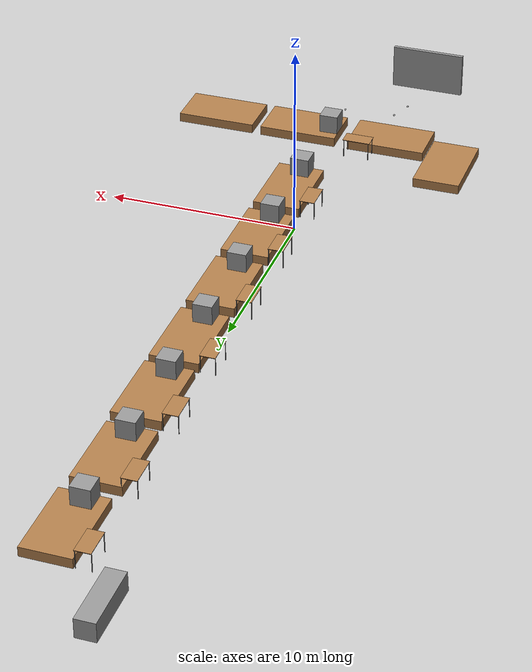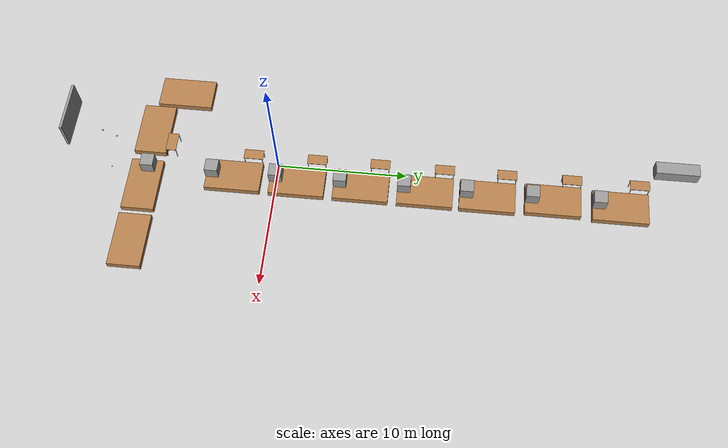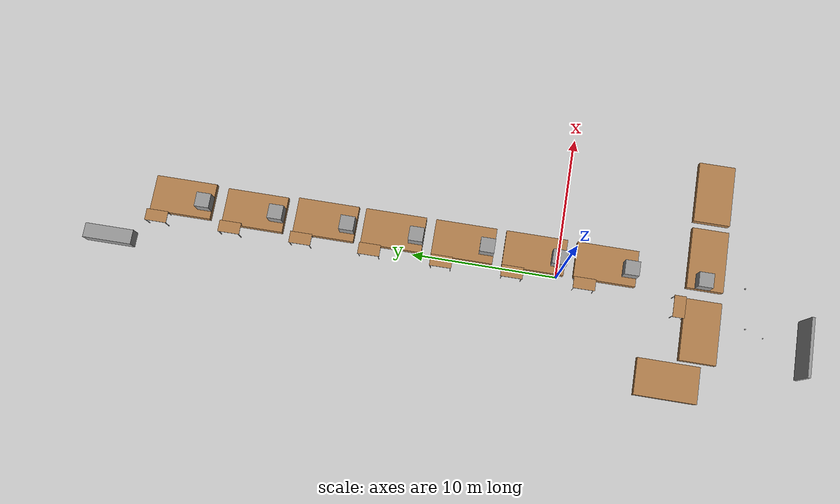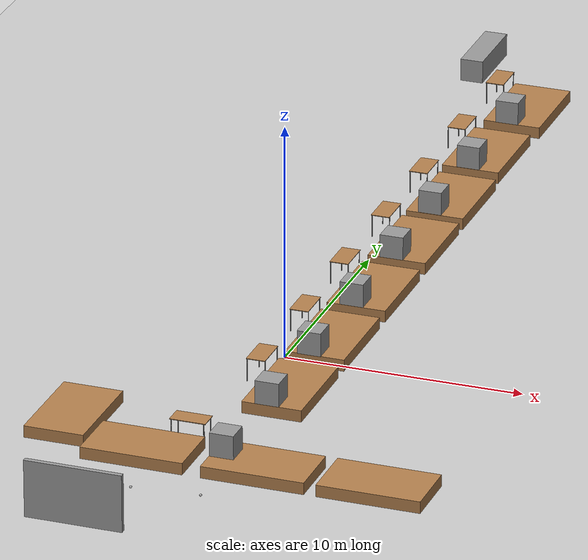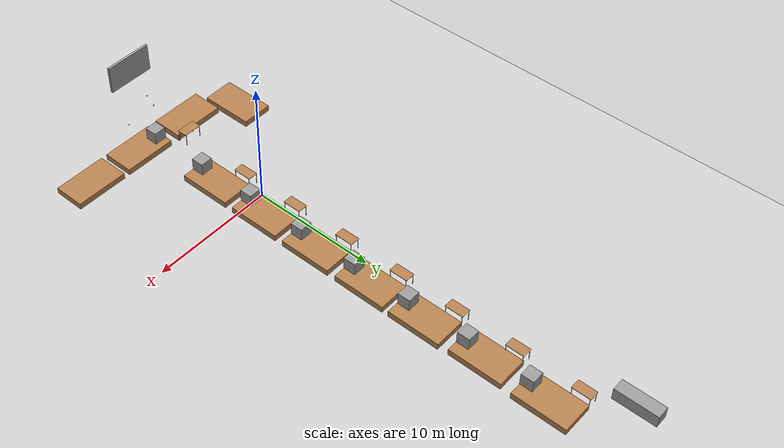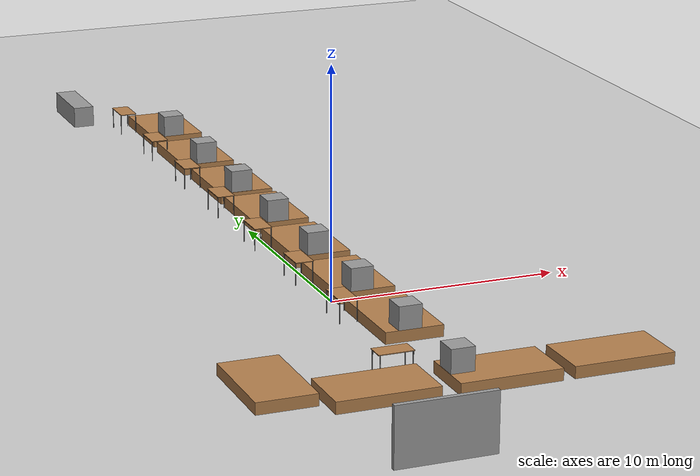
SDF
<sdf version="1.6">
 <world name="default">
  <model name="ground_plane">
   <static>1</static>
   <link name="link">
    <collision name="collision">
     <geometry><plane><normal>0 0 1</normal><size>100 100</size></plane></geometry>
     <surface>
      <contact><collide_bitmask>65535</collide_bitmask></contact>
      <friction><ode><mu>100</mu><mu2>50</mu2></ode></friction>
     </surface>
    </collision>
    <visual name="visual">
     <cast_shadows>0</cast_shadows>
     <geometry><plane><normal>0 0 1</normal><size>100 100</size></plane></geometry>
     <material>
      <script><uri>file://media/materials/scripts/gazebo.material</uri><name>Gazebo/Grey</name></script>
     </material>
    </visual>
   </link>
   <pose>-3.51447 11.9136 0 0 -0 0</pose>
  </model>
  <model name="table_clone">
   <static>1</static>
   <link name="link">
    <collision name="surface">
     <pose>0 0 1 0 -0 0</pose>
     <geometry><box><size>1.5 0.8 0.03</size></box></geometry>
     <surface><friction><ode><mu>0.6</mu><mu2>0.6</mu2></ode></friction></surface>
    </collision>
    <visual name="visual1">
     <pose>0 0 1 0 -0 0</pose>
     <geometry><box><size>1.5 0.8 0.03</size></box></geometry>
     <material>
      <script><uri>file://media/materials/scripts/gazebo.material</uri><name>Gazebo/Wood</name></script>
     </material>
    </visual>
    <collision name="front_left_leg">
     <pose>0.68 0.38 0.5 0 -0 0</pose>
     <geometry><cylinder><radius>0.02</radius><length>1</length></cylinder></geometry>
    </collision>
    <visual name="front_left_leg">
     <pose>0.68 0.38 0.5 0 -0 0</pose>
     <geometry><cylinder><radius>0.02</radius><length>1</length></cylinder></geometry>
     <material>
      <script><uri>file://media/materials/scripts/gazebo.material</uri><name>Gazebo/Grey</name></script>
     </material>
    </visual>
    <collision name="front_right_leg">
     <pose>0.68 -0.38 0.5 0 -0 0</pose>
     <geometry><cylinder><radius>0.02</radius><length>1</length></cylinder></geometry>
    </collision>
    <visual name="front_right_leg">
     <pose>0.68 -0.38 0.5 0 -0 0</pose>
     <geometry><cylinder><radius>0.02</radius><length>1</length></cylinder></geometry>
     <material>
      <script><uri>file://media/materials/scripts/gazebo.material</uri><name>Gazebo/Grey</name></script>
     </material>
    </visual>
    <collision name="back_right_leg">
     <pose>-0.68 -0.38 0.5 0 -0 0</pose>
     <geometry><cylinder><radius>0.02</radius><length>1</length></cylinder></geometry>
    </collision>
    <visual name="back_right_leg">
     <pose>-0.68 -0.38 0.5 0 -0 0</pose>
     <geometry><cylinder><radius>0.02</radius><length>1</length></cylinder></geometry>
     <material>
      <script><uri>file://media/materials/scripts/gazebo.material</uri><name>Gazebo/Grey</name></script>
     </material>
    </visual>
    <collision name="back_left_leg">
     <pose>-0.68 0.38 0.5 0 -0 0</pose>
     <geometry><cylinder><radius>0.02</radius><length>1</length></cylinder></geometry>
    </collision>
    <visual name="back_left_leg">
     <pose>-0.68 0.38 0.5 0 -0 0</pose>
     <geometry><cylinder><radius>0.02</radius><length>1</length></cylinder></geometry>
     <material>
      <script><uri>file://media/materials/scripts/gazebo.material</uri><name>Gazebo/Grey</name></script>
     </material>
    </visual>
   </link>
   <pose>-0.263897 3.07041 0 0 0 -1.56764</pose>
  </model>
  <model name="table_clone_clone">
   <static>1</static>
   <link name="link">
    <collision name="surface">
     <pose>0 0 1 0 -0 0</pose>
     <geometry><box><size>1.5 0.8 0.03</size></box></geometry>
     <surface><friction><ode><mu>0.6</mu><mu2>0.6</mu2></ode></friction></surface>
    </collision>
    <visual name="visual1">
     <pose>0 0 1 0 -0 0</pose>
     <geometry><box><size>1.5 0.8 0.03</size></box></geometry>
     <material>
      <script><uri>file://media/materials/scripts/gazebo.material</uri><name>Gazebo/Wood</name></script>
     </material>
    </visual>
    <collision name="front_left_leg">
     <pose>0.68 0.38 0.5 0 -0 0</pose>
     <geometry><cylinder><radius>0.02</radius><length>1</length></cylinder></geometry>
    </collision>
    <visual name="front_left_leg">
     <pose>0.68 0.38 0.5 0 -0 0</pose>
     <geometry><cylinder><radius>0.02</radius><length>1</length></cylinder></geometry>
     <material>
      <script><uri>file://media/materials/scripts/gazebo.material</uri><name>Gazebo/Grey</name></script>
     </material>
    </visual>
    <collision name="front_right_leg">
     <pose>0.68 -0.38 0.5 0 -0 0</pose>
     <geometry><cylinder><radius>0.02</radius><length>1</length></cylinder></geometry>
    </collision>
    <visual name="front_right_leg">
     <pose>0.68 -0.38 0.5 0 -0 0</pose>
     <geometry><cylinder><radius>0.02</radius><length>1</length></cylinder></geometry>
     <material>
      <script><uri>file://media/materials/scripts/gazebo.material</uri><name>Gazebo/Grey</name></script>
     </material>
    </visual>
    <collision name="back_right_leg">
     <pose>-0.68 -0.38 0.5 0 -0 0</pose>
     <geometry><cylinder><radius>0.02</radius><length>1</length></cylinder></geometry>
    </collision>
    <visual name="back_right_leg">
     <pose>-0.68 -0.38 0.5 0 -0 0</pose>
     <geometry><cylinder><radius>0.02</radius><length>1</length></cylinder></geometry>
     <material>
      <script><uri>file://media/materials/scripts/gazebo.material</uri><name>Gazebo/Grey</name></script>
     </material>
    </visual>
    <collision name="back_left_leg">
     <pose>-0.68 0.38 0.5 0 -0 0</pose>
     <geometry><cylinder><radius>0.02</radius><length>1</length></cylinder></geometry>
    </collision>
    <visual name="back_left_leg">
     <pose>-0.68 0.38 0.5 0 -0 0</pose>
     <geometry><cylinder><radius>0.02</radius><length>1</length></cylinder></geometry>
     <material>
      <script><uri>file://media/materials/scripts/gazebo.material</uri><name>Gazebo/Grey</name></script>
     </material>
    </visual>
   </link>
   <pose>-0.280452 -1.87389 0 0 0 -1.56764</pose>
  </model>
  <model name="table_clone_clone_0">
   <static>1</static>
   <link name="link">
    <collision name="surface">
     <pose>0 0 1 0 -0 0</pose>
     <geometry><box><size>1.5 0.8 0.03</size></box></geometry>
     <surface><friction><ode><mu>0.6</mu><mu2>0.6</mu2></ode></friction></surface>
    </collision>
    <visual name="visual1">
     <pose>0 0 1 0 -0 0</pose>
     <geometry><box><size>1.5 0.8 0.03</size></box></geometry>
     <material>
      <script><uri>file://media/materials/scripts/gazebo.material</uri><name>Gazebo/Wood</name></script>
     </material>
    </visual>
    <collision name="front_left_leg">
     <pose>0.68 0.38 0.5 0 -0 0</pose>
     <geometry><cylinder><radius>0.02</radius><length>1</length></cylinder></geometry>
    </collision>
    <visual name="front_left_leg">
     <pose>0.68 0.38 0.5 0 -0 0</pose>
     <geometry><cylinder><radius>0.02</radius><length>1</length></cylinder></geometry>
     <material>
      <script><uri>file://media/materials/scripts/gazebo.material</uri><name>Gazebo/Grey</name></script>
     </material>
    </visual>
    <collision name="front_right_leg">
     <pose>0.68 -0.38 0.5 0 -0 0</pose>
     <geometry><cylinder><radius>0.02</radius><length>1</length></cylinder></geometry>
    </collision>
    <visual name="front_right_leg">
     <pose>0.68 -0.38 0.5 0 -0 0</pose>
     <geometry><cylinder><radius>0.02</radius><length>1</length></cylinder></geometry>
     <material>
      <script><uri>file://media/materials/scripts/gazebo.material</uri><name>Gazebo/Grey</name></script>
     </material>
    </visual>
    <collision name="back_right_leg">
     <pose>-0.68 -0.38 0.5 0 -0 0</pose>
     <geometry><cylinder><radius>0.02</radius><length>1</length></cylinder></geometry>
    </collision>
    <visual name="back_right_leg">
     <pose>-0.68 -0.38 0.5 0 -0 0</pose>
     <geometry><cylinder><radius>0.02</radius><length>1</length></cylinder></geometry>
     <material>
      <script><uri>file://media/materials/scripts/gazebo.material</uri><name>Gazebo/Grey</name></script>
     </material>
    </visual>
    <collision name="back_left_leg">
     <pose>-0.68 0.38 0.5 0 -0 0</pose>
     <geometry><cylinder><radius>0.02</radius><length>1</length></cylinder></geometry>
    </collision>
    <visual name="back_left_leg">
     <pose>-0.68 0.38 0.5 0 -0 0</pose>
     <geometry><cylinder><radius>0.02</radius><length>1</length></cylinder></geometry>
     <material>
      <script><uri>file://media/materials/scripts/gazebo.material</uri><name>Gazebo/Grey</name></script>
     </material>
    </visual>
   </link>
   <pose>-0.311266 7.9439 0 0 0 -1.56764</pose>
  </model>
  <model name="table_clone_clone_1">
   <static>1</static>
   <link name="link">
    <collision name="surface">
     <pose>0 0 1 0 -0 0</pose>
     <geometry><box><size>1.5 0.8 0.03</size></box></geometry>
     <surface><friction><ode><mu>0.6</mu><mu2>0.6</mu2></ode></friction></surface>
    </collision>
    <visual name="visual1">
     <pose>0 0 1 0 -0 0</pose>
     <geometry><box><size>1.5 0.8 0.03</size></box></geometry>
     <material>
      <script><uri>file://media/materials/scripts/gazebo.material</uri><name>Gazebo/Wood</name></script>
     </material>
    </visual>
    <collision name="front_left_leg">
     <pose>0.68 0.38 0.5 0 -0 0</pose>
     <geometry><cylinder><radius>0.02</radius><length>1</length></cylinder></geometry>
    </collision>
    <visual name="front_left_leg">
     <pose>0.68 0.38 0.5 0 -0 0</pose>
     <geometry><cylinder><radius>0.02</radius><length>1</length></cylinder></geometry>
     <material>
      <script><uri>file://media/materials/scripts/gazebo.material</uri><name>Gazebo/Grey</name></script>
     </material>
    </visual>
    <collision name="front_right_leg">
     <pose>0.68 -0.38 0.5 0 -0 0</pose>
     <geometry><cylinder><radius>0.02</radius><length>1</length></cylinder></geometry>
    </collision>
    <visual name="front_right_leg">
     <pose>0.68 -0.38 0.5 0 -0 0</pose>
     <geometry><cylinder><radius>0.02</radius><length>1</length></cylinder></geometry>
     <material>
      <script><uri>file://media/materials/scripts/gazebo.material</uri><name>Gazebo/Grey</name></script>
     </material>
    </visual>
    <collision name="back_right_leg">
     <pose>-0.68 -0.38 0.5 0 -0 0</pose>
     <geometry><cylinder><radius>0.02</radius><length>1</length></cylinder></geometry>
    </collision>
    <visual name="back_right_leg">
     <pose>-0.68 -0.38 0.5 0 -0 0</pose>
     <geometry><cylinder><radius>0.02</radius><length>1</length></cylinder></geometry>
     <material>
      <script><uri>file://media/materials/scripts/gazebo.material</uri><name>Gazebo/Grey</name></script>
     </material>
    </visual>
    <collision name="back_left_leg">
     <pose>-0.68 0.38 0.5 0 -0 0</pose>
     <geometry><cylinder><radius>0.02</radius><length>1</length></cylinder></geometry>
    </collision>
    <visual name="back_left_leg">
     <pose>-0.68 0.38 0.5 0 -0 0</pose>
     <geometry><cylinder><radius>0.02</radius><length>1</length></cylinder></geometry>
     <material>
      <script><uri>file://media/materials/scripts/gazebo.material</uri><name>Gazebo/Grey</name></script>
     </material>
    </visual>
   </link>
   <pose>-0.283344 12.903 0 0 0 -1.56764</pose>
  </model>
  <model name="table_clone_clone_2">
   <static>1</static>
   <link name="link">
    <collision name="surface">
     <pose>0 0 1 0 -0 0</pose>
     <geometry><box><size>1.5 0.8 0.03</size></box></geometry>
     <surface><friction><ode><mu>0.6</mu><mu2>0.6</mu2></ode></friction></surface>
    </collision>
    <visual name="visual1">
     <pose>0 0 1 0 -0 0</pose>
     <geometry><box><size>1.5 0.8 0.03</size></box></geometry>
     <material>
      <script><uri>file://media/materials/scripts/gazebo.material</uri><name>Gazebo/Wood</name></script>
     </material>
    </visual>
    <collision name="front_left_leg">
     <pose>0.68 0.38 0.5 0 -0 0</pose>
     <geometry><cylinder><radius>0.02</radius><length>1</length></cylinder></geometry>
    </collision>
    <visual name="front_left_leg">
     <pose>0.68 0.38 0.5 0 -0 0</pose>
     <geometry><cylinder><radius>0.02</radius><length>1</length></cylinder></geometry>
     <material>
      <script><uri>file://media/materials/scripts/gazebo.material</uri><name>Gazebo/Grey</name></script>
     </material>
    </visual>
    <collision name="front_right_leg">
     <pose>0.68 -0.38 0.5 0 -0 0</pose>
     <geometry><cylinder><radius>0.02</radius><length>1</length></cylinder></geometry>
    </collision>
    <visual name="front_right_leg">
     <pose>0.68 -0.38 0.5 0 -0 0</pose>
     <geometry><cylinder><radius>0.02</radius><length>1</length></cylinder></geometry>
     <material>
      <script><uri>file://media/materials/scripts/gazebo.material</uri><name>Gazebo/Grey</name></script>
     </material>
    </visual>
    <collision name="back_right_leg">
     <pose>-0.68 -0.38 0.5 0 -0 0</pose>
     <geometry><cylinder><radius>0.02</radius><length>1</length></cylinder></geometry>
    </collision>
    <visual name="back_right_leg">
     <pose>-0.68 -0.38 0.5 0 -0 0</pose>
     <geometry><cylinder><radius>0.02</radius><length>1</length></cylinder></geometry>
     <material>
      <script><uri>file://media/materials/scripts/gazebo.material</uri><name>Gazebo/Grey</name></script>
     </material>
    </visual>
    <collision name="back_left_leg">
     <pose>-0.68 0.38 0.5 0 -0 0</pose>
     <geometry><cylinder><radius>0.02</radius><length>1</length></cylinder></geometry>
    </collision>
    <visual name="back_left_leg">
     <pose>-0.68 0.38 0.5 0 -0 0</pose>
     <geometry><cylinder><radius>0.02</radius><length>1</length></cylinder></geometry>
     <material>
      <script><uri>file://media/materials/scripts/gazebo.material</uri><name>Gazebo/Grey</name></script>
     </material>
    </visual>
   </link>
   <pose>-0.282545 17.6818 0 0 0 -1.56764</pose>
  </model>
  <model name="table_clone_clone_3">
   <static>1</static>
   <link name="link">
    <collision name="surface">
     <pose>0 0 1 0 -0 0</pose>
     <geometry><box><size>1.5 0.8 0.03</size></box></geometry>
     <surface><friction><ode><mu>0.6</mu><mu2>0.6</mu2></ode></friction></surface>
    </collision>
    <visual name="visual1">
     <pose>0 0 1 0 -0 0</pose>
     <geometry><box><size>1.5 0.8 0.03</size></box></geometry>
     <material>
      <script><uri>file://media/materials/scripts/gazebo.material</uri><name>Gazebo/Wood</name></script>
     </material>
    </visual>
    <collision name="front_left_leg">
     <pose>0.68 0.38 0.5 0 -0 0</pose>
     <geometry><cylinder><radius>0.02</radius><length>1</length></cylinder></geometry>
    </collision>
    <visual name="front_left_leg">
     <pose>0.68 0.38 0.5 0 -0 0</pose>
     <geometry><cylinder><radius>0.02</radius><length>1</length></cylinder></geometry>
     <material>
      <script><uri>file://media/materials/scripts/gazebo.material</uri><name>Gazebo/Grey</name></script>
     </material>
    </visual>
    <collision name="front_right_leg">
     <pose>0.68 -0.38 0.5 0 -0 0</pose>
     <geometry><cylinder><radius>0.02</radius><length>1</length></cylinder></geometry>
    </collision>
    <visual name="front_right_leg">
     <pose>0.68 -0.38 0.5 0 -0 0</pose>
     <geometry><cylinder><radius>0.02</radius><length>1</length></cylinder></geometry>
     <material>
      <script><uri>file://media/materials/scripts/gazebo.material</uri><name>Gazebo/Grey</name></script>
     </material>
    </visual>
    <collision name="back_right_leg">
     <pose>-0.68 -0.38 0.5 0 -0 0</pose>
     <geometry><cylinder><radius>0.02</radius><length>1</length></cylinder></geometry>
    </collision>
    <visual name="back_right_leg">
     <pose>-0.68 -0.38 0.5 0 -0 0</pose>
     <geometry><cylinder><radius>0.02</radius><length>1</length></cylinder></geometry>
     <material>
      <script><uri>file://media/materials/scripts/gazebo.material</uri><name>Gazebo/Grey</name></script>
     </material>
    </visual>
    <collision name="back_left_leg">
     <pose>-0.68 0.38 0.5 0 -0 0</pose>
     <geometry><cylinder><radius>0.02</radius><length>1</length></cylinder></geometry>
    </collision>
    <visual name="back_left_leg">
     <pose>-0.68 0.38 0.5 0 -0 0</pose>
     <geometry><cylinder><radius>0.02</radius><length>1</length></cylinder></geometry>
     <material>
      <script><uri>file://media/materials/scripts/gazebo.material</uri><name>Gazebo/Grey</name></script>
     </material>
    </visual>
   </link>
   <pose>-0.292 22.6184 0 0 0 -1.56764</pose>
  </model>
  <model name="table_clone_clone_4">
   <static>1</static>
   <link name="link">
    <collision name="surface">
     <pose>0 0 1 0 -0 0</pose>
     <geometry><box><size>1.5 0.8 0.03</size></box></geometry>
     <surface><friction><ode><mu>0.6</mu><mu2>0.6</mu2></ode></friction></surface>
    </collision>
    <visual name="visual1">
     <pose>0 0 1 0 -0 0</pose>
     <geometry><box><size>1.5 0.8 0.03</size></box></geometry>
     <material>
      <script><uri>file://media/materials/scripts/gazebo.material</uri><name>Gazebo/Wood</name></script>
     </material>
    </visual>
    <collision name="front_left_leg">
     <pose>0.68 0.38 0.5 0 -0 0</pose>
     <geometry><cylinder><radius>0.02</radius><length>1</length></cylinder></geometry>
    </collision>
    <visual name="front_left_leg">
     <pose>0.68 0.38 0.5 0 -0 0</pose>
     <geometry><cylinder><radius>0.02</radius><length>1</length></cylinder></geometry>
     <material>
      <script><uri>file://media/materials/scripts/gazebo.material</uri><name>Gazebo/Grey</name></script>
     </material>
    </visual>
    <collision name="front_right_leg">
     <pose>0.68 -0.38 0.5 0 -0 0</pose>
     <geometry><cylinder><radius>0.02</radius><length>1</length></cylinder></geometry>
    </collision>
    <visual name="front_right_leg">
     <pose>0.68 -0.38 0.5 0 -0 0</pose>
     <geometry><cylinder><radius>0.02</radius><length>1</length></cylinder></geometry>
     <material>
      <script><uri>file://media/materials/scripts/gazebo.material</uri><name>Gazebo/Grey</name></script>
     </material>
    </visual>
    <collision name="back_right_leg">
     <pose>-0.68 -0.38 0.5 0 -0 0</pose>
     <geometry><cylinder><radius>0.02</radius><length>1</length></cylinder></geometry>
    </collision>
    <visual name="back_right_leg">
     <pose>-0.68 -0.38 0.5 0 -0 0</pose>
     <geometry><cylinder><radius>0.02</radius><length>1</length></cylinder></geometry>
     <material>
      <script><uri>file://media/materials/scripts/gazebo.material</uri><name>Gazebo/Grey</name></script>
     </material>
    </visual>
    <collision name="back_left_leg">
     <pose>-0.68 0.38 0.5 0 -0 0</pose>
     <geometry><cylinder><radius>0.02</radius><length>1</length></cylinder></geometry>
    </collision>
    <visual name="back_left_leg">
     <pose>-0.68 0.38 0.5 0 -0 0</pose>
     <geometry><cylinder><radius>0.02</radius><length>1</length></cylinder></geometry>
     <material>
      <script><uri>file://media/materials/scripts/gazebo.material</uri><name>Gazebo/Grey</name></script>
     </material>
    </visual>
   </link>
   <pose>-0.3 27.7319 0 0 0 -1.56764</pose>
  </model>
  <model name="table_clone_clone_5_clone_0">
   <static>1</static>
   <link name="link">
    <collision name="surface">
     <pose>0 0 1 0 -0 0</pose>
     <geometry><box><size>1.5 0.8 0.03</size></box></geometry>
     <surface><friction><ode><mu>0.6</mu><mu2>0.6</mu2></ode></friction></surface>
    </collision>
    <visual name="visual1">
     <pose>0 0 1 0 -0 0</pose>
     <geometry><box><size>1.5 0.8 0.03</size></box></geometry>
     <material>
      <script><uri>file://media/materials/scripts/gazebo.material</uri><name>Gazebo/Wood</name></script>
     </material>
    </visual>
    <collision name="front_left_leg">
     <pose>0.68 0.38 0.5 0 -0 0</pose>
     <geometry><cylinder><radius>0.02</radius><length>1</length></cylinder></geometry>
    </collision>
    <visual name="front_left_leg">
     <pose>0.68 0.38 0.5 0 -0 0</pose>
     <geometry><cylinder><radius>0.02</radius><length>1</length></cylinder></geometry>
     <material>
      <script><uri>file://media/materials/scripts/gazebo.material</uri><name>Gazebo/Grey</name></script>
     </material>
    </visual>
    <collision name="front_right_leg">
     <pose>0.68 -0.38 0.5 0 -0 0</pose>
     <geometry><cylinder><radius>0.02</radius><length>1</length></cylinder></geometry>
    </collision>
    <visual name="front_right_leg">
     <pose>0.68 -0.38 0.5 0 -0 0</pose>
     <geometry><cylinder><radius>0.02</radius><length>1</length></cylinder></geometry>
     <material>
      <script><uri>file://media/materials/scripts/gazebo.material</uri><name>Gazebo/Grey</name></script>
     </material>
    </visual>
    <collision name="back_right_leg">
     <pose>-0.68 -0.38 0.5 0 -0 0</pose>
     <geometry><cylinder><radius>0.02</radius><length>1</length></cylinder></geometry>
    </collision>
    <visual name="back_right_leg">
     <pose>-0.68 -0.38 0.5 0 -0 0</pose>
     <geometry><cylinder><radius>0.02</radius><length>1</length></cylinder></geometry>
     <material>
      <script><uri>file://media/materials/scripts/gazebo.material</uri><name>Gazebo/Grey</name></script>
     </material>
    </visual>
    <collision name="back_left_leg">
     <pose>-0.68 0.38 0.5 0 -0 0</pose>
     <geometry><cylinder><radius>0.02</radius><length>1</length></cylinder></geometry>
    </collision>
    <visual name="back_left_leg">
     <pose>-0.68 0.38 0.5 0 -0 0</pose>
     <geometry><cylinder><radius>0.02</radius><length>1</length></cylinder></geometry>
     <material>
      <script><uri>file://media/materials/scripts/gazebo.material</uri><name>Gazebo/Grey</name></script>
     </material>
    </visual>
   </link>
   <pose>-0.816001 -8.38126 0 0 -0 0</pose>
  </model>
  <model name="L_wall_wood">
   <pose>1.29872 -8.7033 0 0 -0 0</pose>
   <link name="Wall_14">
    <collision name="Wall_14_Collision">
     <geometry><box><size>4.25 2.5 0.5</size></box></geometry>
     <pose>0 0 0.25 0 -0 0</pose>
    </collision>
    <visual name="Wall_14_Visual">
     <pose>0 0 0.25 0 -0 0</pose>
     <geometry><box><size>4.25 2.5 0.5</size></box></geometry>
     <material>
      <script><uri>file://media/materials/scripts/gazebo.material</uri><name>Gazebo/Wood</name></script>
      <ambient>1 1 1 1</ambient>
     </material>
     <meta><layer>0</layer></meta>
    </visual>
    <pose>6.238 -1.377 0 0 -0 0</pose>
   </link>
   <link name="Wall_16">
    <collision name="Wall_16_Collision">
     <geometry><box><size>4.25 2.5 0.5</size></box></geometry>
     <pose>0 0 0.25 0 -0 0</pose>
    </collision>
    <visual name="Wall_16_Visual">
     <pose>0 0 0.25 0 -0 0</pose>
     <geometry><box><size>4.25 2.5 0.5</size></box></geometry>
     <material>
      <script><uri>file://media/materials/scripts/gazebo.material</uri><name>Gazebo/Wood</name></script>
      <ambient>1 1 1 1</ambient>
     </material>
     <meta><layer>0</layer></meta>
    </visual>
    <pose>1.505 -1.377 0 0 -0 3.14159</pose>
   </link>
   <link name="Wall_18">
    <collision name="Wall_18_Collision">
     <geometry><box><size>4.25 2.5 0.5</size></box></geometry>
     <pose>0 0 0.25 0 -0 0</pose>
    </collision>
    <visual name="Wall_18_Visual">
     <pose>0 0 0.25 0 -0 0</pose>
     <geometry><box><size>4.25 2.5 0.5</size></box></geometry>
     <material>
      <script><uri>file://media/materials/scripts/gazebo.material</uri><name>Gazebo/Wood</name></script>
      <ambient>1 1 1 1</ambient>
     </material>
     <meta><layer>0</layer></meta>
    </visual>
    <pose>-3.485 -1.377 0 0 -0 3.14159</pose>
   </link>
   <link name="Wall_20">
    <collision name="Wall_20_Collision">
     <geometry><box><size>4.25 2.5 0.5</size></box></geometry>
     <pose>0 0 0.25 0 -0 0</pose>
    </collision>
    <visual name="Wall_20_Visual">
     <pose>0 0 0.25 0 -0 0</pose>
     <geometry><box><size>4.25 2.5 0.5</size></box></geometry>
     <material>
      <script><uri>file://media/materials/scripts/gazebo.material</uri><name>Gazebo/Wood</name></script>
      <ambient>1 1 1 1</ambient>
     </material>
     <meta><layer>0</layer></meta>
    </visual>
    <pose>-7.113 0.502 0 0 -0 1.5708</pose>
   </link>
   <static>1</static>
  </model>
  <model name="grey_wall_0_clone_0">
   <static>1</static>
   <link name="link">
    <pose>0 0 1.4 0 -0 0</pose>
    <collision name="collision"><geometry><box><size>4 0.2 2.4</size></box></geometry></collision>
    <visual name="visual">
     <cast_shadows>0</cast_shadows>
     <geometry><box><size>4 0.2 2.4</size></box></geometry>
     <material>
      <script>
       <uri>model://grey_wall/materials/scripts</uri>
       <uri>model://grey_wall/materials/textures</uri>
       <name>vrc/grey_wall</name>
      </script>
     </material>
    </visual>
   </link>
   <pose>-2.37767 -16.7729 -0.12326 0 -0 0</pose>
  </model>
  <model name="unit_box">
   <pose>-2.05231 30.7133 0.529992 -4e-06 2e-06 0.001863</pose>
   <link name="link">
    <inertial>
     <mass>1</mass>
     <inertia>
      <ixx>0.166667</ixx>
      <ixy>0</ixy>
      <ixz>0</ixz>
      <iyy>0.166667</iyy>
      <iyz>0</iyz>
      <izz>0.166667</izz>
     </inertia>
    </inertial>
    <collision name="collision"><geometry><box><size>1 3.3369 1</size></box></geometry></collision>
    <visual name="visual">
     <geometry><box><size>1 3.3369 1</size></box></geometry>
     <material>
      <script><name>Gazebo/Grey</name><uri>file://media/materials/scripts/gazebo.material</uri></script>
     </material>
    </visual>
   </link>
  </model>
  <model name="unit_box_1">
   <pose>1.19128 24.6948 1 0 -0 0.000556</pose>
   <link name="link">
    <inertial>
     <mass>1</mass>
     <inertia>
      <ixx>0.166667</ixx>
      <ixy>0</ixy>
      <ixz>0</ixz>
      <iyy>0.166667</iyy>
      <iyz>0</iyz>
      <izz>0.166667</izz>
     </inertia>
    </inertial>
    <collision name="collision"><geometry><box><size>1 1 1</size></box></geometry></collision>
    <visual name="visual">
     <geometry><box><size>1 1 1</size></box></geometry>
     <material>
      <script><name>Gazebo/Grey</name><uri>file://media/materials/scripts/gazebo.material</uri></script>
     </material>
    </visual>
   </link>
  </model>
  <model name="unit_box_2">
   <pose>1.1742 19.6286 1 0 -0 0.000336</pose>
   <link name="link">
    <inertial>
     <mass>1</mass>
     <inertia>
      <ixx>0.166667</ixx>
      <ixy>0</ixy>
      <ixz>0</ixz>
      <iyy>0.166667</iyy>
      <iyz>0</iyz>
      <izz>0.166667</izz>
     </inertia>
    </inertial>
    <collision name="collision"><geometry><box><size>1 1 1</size></box></geometry></collision>
    <visual name="visual">
     <geometry><box><size>1 1 1</size></box></geometry>
     <material>
      <script><name>Gazebo/Grey</name><uri>file://media/materials/scripts/gazebo.material</uri></script>
     </material>
    </visual>
   </link>
  </model>
  <model name="unit_box_3">
   <pose>1.18793 14.6668 1 0 -0 0.000345</pose>
   <link name="link">
    <inertial>
     <mass>1</mass>
     <inertia>
      <ixx>0.166667</ixx>
      <ixy>0</ixy>
      <ixz>0</ixz>
      <iyy>0.166667</iyy>
      <iyz>0</iyz>
      <izz>0.166667</izz>
     </inertia>
    </inertial>
    <collision name="collision"><geometry><box><size>1 1 1</size></box></geometry></collision>
    <visual name="visual">
     <geometry><box><size>1 1 1</size></box></geometry>
     <material>
      <script><name>Gazebo/Grey</name><uri>file://media/materials/scripts/gazebo.material</uri></script>
     </material>
    </visual>
   </link>
  </model>
  <model name="unit_box_4">
   <pose>1.18477 9.88305 1 0 -0 0.00055</pose>
   <link name="link">
    <inertial>
     <mass>1</mass>
     <inertia>
      <ixx>0.166667</ixx>
      <ixy>0</ixy>
      <ixz>0</ixz>
      <iyy>0.166667</iyy>
      <iyz>0</iyz>
      <izz>0.166667</izz>
     </inertia>
    </inertial>
    <collision name="collision"><geometry><box><size>1 1 1</size></box></geometry></collision>
    <visual name="visual">
     <geometry><box><size>1 1 1</size></box></geometry>
     <material>
      <script><name>Gazebo/Grey</name><uri>file://media/materials/scripts/gazebo.material</uri></script>
     </material>
    </visual>
   </link>
  </model>
  <model name="unit_box_5">
   <pose>1.20118 4.9847 1 0 -0 0.000352</pose>
   <link name="link">
    <inertial>
     <mass>1</mass>
     <inertia>
      <ixx>0.166667</ixx>
      <ixy>0</ixy>
      <ixz>0</ixz>
      <iyy>0.166667</iyy>
      <iyz>0</iyz>
      <izz>0.166667</izz>
     </inertia>
    </inertial>
    <collision name="collision"><geometry><box><size>1 1 1</size></box></geometry></collision>
    <visual name="visual">
     <geometry><box><size>1 1 1</size></box></geometry>
     <material>
      <script><name>Gazebo/Grey</name><uri>file://media/materials/scripts/gazebo.material</uri></script>
     </material>
    </visual>
   </link>
  </model>
  <model name="unit_box_6">
   <pose>1.17746 0.02476 1 0 -0 0.00037</pose>
   <link name="link">
    <inertial>
     <mass>1</mass>
     <inertia>
      <ixx>0.166667</ixx>
      <ixy>0</ixy>
      <ixz>0</ixz>
      <iyy>0.166667</iyy>
      <iyz>0</iyz>
      <izz>0.166667</izz>
     </inertia>
    </inertial>
    <collision name="collision"><geometry><box><size>1 1 1</size></box></geometry></collision>
    <visual name="visual">
     <geometry><box><size>1 1 1</size></box></geometry>
     <material>
      <script><name>Gazebo/Grey</name><uri>file://media/materials/scripts/gazebo.material</uri></script>
     </material>
    </visual>
   </link>
  </model>
  <model name="unit_box_7">
   <pose>1.21385 -4.87739 1 0 -0 3.2e-05</pose>
   <link name="link">
    <inertial>
     <mass>1</mass>
     <inertia>
      <ixx>0.166667</ixx>
      <ixy>0</ixy>
      <ixz>0</ixz>
      <iyy>0.166667</iyy>
      <iyz>0</iyz>
      <izz>0.166667</izz>
     </inertia>
    </inertial>
    <collision name="collision"><geometry><box><size>1 1 1</size></box></geometry></collision>
    <visual name="visual">
     <geometry><box><size>1 1 1</size></box></geometry>
     <material>
      <script><name>Gazebo/Grey</name><uri>file://media/materials/scripts/gazebo.material</uri></script>
     </material>
    </visual>
   </link>
  </model>
  <model name="unit_box_9">
   <pose>1.19296 -9.87173 1 0 -0 0.000369</pose>
   <link name="link">
    <inertial>
     <mass>1</mass>
     <inertia>
      <ixx>0.166667</ixx>
      <ixy>0</ixy>
      <ixz>0</ixz>
      <iyy>0.166667</iyy>
      <iyz>0</iyz>
      <izz>0.166667</izz>
     </inertia>
    </inertial>
    <collision name="collision"><geometry><box><size>1 1 1</size></box></geometry></collision>
    <visual name="visual">
     <geometry><box><size>1 1 1</size></box></geometry>
     <material>
      <script><name>Gazebo/Grey</name><uri>file://media/materials/scripts/gazebo.material</uri></script>
     </material>
    </visual>
   </link>
  </model>
  <model name="cut_floor_wood">
   <pose>1.33828 11.5505 0 0 -0 0</pose>
   <link name="Wall_0">
    <collision name="Wall_0_Collision">
     <geometry><box><size>4.25 2.5 0.5</size></box></geometry>
     <pose>0 0 0.25 0 -0 0</pose>
    </collision>
    <visual name="Wall_0_Visual">
     <pose>0 0 0.25 0 -0 0</pose>
     <geometry><box><size>4.25 2.5 0.5</size></box></geometry>
     <material>
      <script><uri>file://media/materials/scripts/gazebo.material</uri><name>Gazebo/Wood</name></script>
      <ambient>1 1 1 1</ambient>
     </material>
     <meta><layer>0</layer></meta>
    </visual>
    <pose>0.0645 -14.794 0 0 -0 1.5708</pose>
   </link>
   <link name="Wall_10">
    <collision name="Wall_10_Collision">
     <geometry><box><size>4.25 2.5 0.5</size></box></geometry>
     <pose>0 0 0.25 0 -0 0</pose>
    </collision>
    <visual name="Wall_10_Visual">
     <pose>0 0 0.25 0 -0 0</pose>
     <geometry><box><size>4.25 2.5 0.5</size></box></geometry>
     <material>
      <script><uri>file://media/materials/scripts/gazebo.material</uri><name>Gazebo/Wood</name></script>
      <ambient>1 1 1 1</ambient>
     </material>
     <meta><layer>0</layer></meta>
    </visual>
    <pose>-0.0645 9.688 0 0 -0 1.5708</pose>
   </link>
   <link name="Wall_12">
    <collision name="Wall_12_Collision">
     <geometry><box><size>4.25 2.5 0.5</size></box></geometry>
     <pose>0 0 0.25 0 -0 0</pose>
    </collision>
    <visual name="Wall_12_Visual">
     <pose>0 0 0.25 0 -0 0</pose>
     <geometry><box><size>4.25 2.5 0.5</size></box></geometry>
     <material>
      <script><uri>file://media/materials/scripts/gazebo.material</uri><name>Gazebo/Wood</name></script>
      <ambient>1 1 1 1</ambient>
     </material>
     <meta><layer>0</layer></meta>
    </visual>
    <pose>0.0645 14.794 0 0 -0 1.5708</pose>
   </link>
   <link name="Wall_2">
    <collision name="Wall_2_Collision">
     <geometry><box><size>4.25 2.5 0.5</size></box></geometry>
     <pose>0 0 0.25 0 -0 0</pose>
    </collision>
    <visual name="Wall_2_Visual">
     <pose>0 0 0.25 0 -0 0</pose>
     <geometry><box><size>4.25 2.5 0.5</size></box></geometry>
     <material>
      <script><uri>file://media/materials/scripts/gazebo.material</uri><name>Gazebo/Wood</name></script>
      <ambient>1 1 1 1</ambient>
     </material>
     <meta><layer>0</layer></meta>
    </visual>
    <pose>0.0645 -9.862 0 0 -0 1.5708</pose>
   </link>
   <link name="Wall_4">
    <collision name="Wall_4_Collision">
     <geometry><box><size>4.25 2.5 0.5</size></box></geometry>
     <pose>0 0 0.25 0 -0 0</pose>
    </collision>
    <visual name="Wall_4_Visual">
     <pose>0 0 0.25 0 -0 0</pose>
     <geometry><box><size>4.25 2.5 0.5</size></box></geometry>
     <material>
      <script><uri>file://media/materials/scripts/gazebo.material</uri><name>Gazebo/Wood</name></script>
      <ambient>1 1 1 1</ambient>
     </material>
     <meta><layer>0</layer></meta>
    </visual>
    <pose>0.0645 -4.945 0 0 -0 1.5708</pose>
   </link>
   <link name="Wall_6">
    <collision name="Wall_6_Collision">
     <geometry><box><size>4.25 2.5 0.5</size></box></geometry>
     <pose>0 0 0.25 0 -0 0</pose>
    </collision>
    <visual name="Wall_6_Visual">
     <pose>0 0 0.25 0 -0 0</pose>
     <geometry><box><size>4.25 2.5 0.5</size></box></geometry>
     <material>
      <script><uri>file://media/materials/scripts/gazebo.material</uri><name>Gazebo/Wood</name></script>
      <ambient>1 1 1 1</ambient>
     </material>
     <meta><layer>0</layer></meta>
    </visual>
    <pose>0.0645 -0.027 0 0 -0 1.5708</pose>
   </link>
   <link name="Wall_8">
    <collision name="Wall_8_Collision">
     <geometry><box><size>4.25 2.5 0.5</size></box></geometry>
     <pose>0 0 0.25 0 -0 0</pose>
    </collision>
    <visual name="Wall_8_Visual">
     <pose>0 0 0.25 0 -0 0</pose>
     <geometry><box><size>4.25 2.5 0.5</size></box></geometry>
     <material>
      <script><uri>file://media/materials/scripts/gazebo.material</uri><name>Gazebo/Wood</name></script>
      <ambient>1 1 1 1</ambient>
     </material>
     <meta><layer>0</layer></meta>
    </visual>
    <pose>0.0645 4.72 0 0 -0 1.5708</pose>
   </link>
   <static>1</static>
  </model>
  <model name="frc2016_ball_clone_7">
   <pose>-1.91226 -14.3724 0.099801 0 -0 0</pose>
   <link name="link">
    <inertial>
     <mass>0.213</mass>
     <inertia>
      <ixx>0.00322667</ixx>
      <ixy>0</ixy>
      <ixz>0</ixz>
      <iyy>0.00322667</iyy>
      <iyz>0</iyz>
      <izz>0.00322667</izz>
     </inertia>
    </inertial>
    <visual name="visual"><geometry><sphere><radius>0.0506132</radius></sphere></geometry></visual>
    <collision name="collision">
     <geometry><sphere><radius>0.0506132</radius></sphere></geometry>
     <surface>
      <bounce><restitution_coefficient>0.15937</restitution_coefficient><threshold>0</threshold></bounce>
      <contact><ode><max_vel>100</max_vel><min_depth>0.001</min_depth></ode></contact>
     </surface>
    </collision>
   </link>
  </model>
  <model name="frc2016_ball_clone_4_clone_45">
   <pose>-1.48013 -13.1499 0.099801 0 -0 0</pose>
   <link name="link">
    <inertial>
     <mass>0.213</mass>
     <inertia>
      <ixx>0.00322667</ixx>
      <ixy>0</ixy>
      <ixz>0</ixz>
      <iyy>0.00322667</iyy>
      <iyz>0</iyz>
      <izz>0.00322667</izz>
     </inertia>
    </inertial>
    <visual name="visual"><geometry><sphere><radius>0.0506132</radius></sphere></geometry></visual>
    <collision name="collision">
     <geometry><sphere><radius>0.0506132</radius></sphere></geometry>
     <surface>
      <bounce><restitution_coefficient>0.15937</restitution_coefficient><threshold>0</threshold></bounce>
      <contact><ode><max_vel>100</max_vel><min_depth>0.001</min_depth></ode></contact>
     </surface>
    </collision>
   </link>
  </model>
  <model name="frc2016_ball_clone_4_clone_55">
   <pose>1.29822 -12.8979 0.099801 0 -0 0</pose>
   <link name="link">
    <inertial>
     <mass>0.213</mass>
     <inertia>
      <ixx>0.00322667</ixx>
      <ixy>0</ixy>
      <ixz>0</ixz>
      <iyy>0.00322667</iyy>
      <iyz>0</iyz>
      <izz>0.00322667</izz>
     </inertia>
    </inertial>
    <visual name="visual"><geometry><sphere><radius>0.0506132</radius></sphere></geometry></visual>
    <collision name="collision">
     <geometry><sphere><radius>0.0506132</radius></sphere></geometry>
     <surface>
      <bounce><restitution_coefficient>0.15937</restitution_coefficient><threshold>0</threshold></bounce>
      <contact><ode><max_vel>100</max_vel><min_depth>0.001</min_depth></ode></contact>
     </surface>
    </collision>
   </link>
  </model>
 </world>
</sdf>
